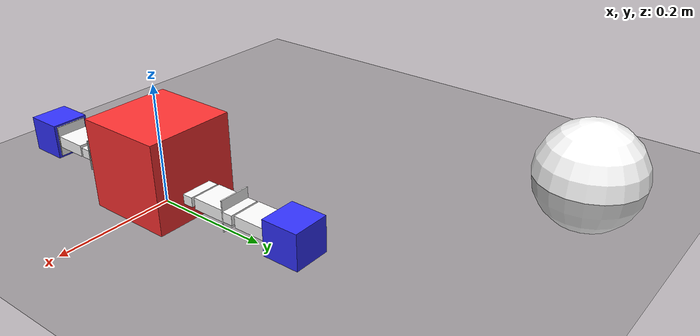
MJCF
<mujoco model="scene">
  <compiler autolimits="true" angle="radian"/>
  <option timestep="0.001" gravity="0 0 -9.8100000000000005" integrator="RK4"/>
  <visual>
    <headlight active="0"/>
  </visual>
  <default>
    <default class="/"/>
    <default class="mbs0/"/>
    <default class="mbs1/"/>
    <default class="mbs2/"/>
  </default>
  <asset>
    <material name="heightmap_0_material" class="/" texrepeat="1 1" emission="0" specular="0.5" shininess="0.5" reflectance="0" rgba="0.39215686274509803 0.39215686274509803 0.39215686274509803 1"/>
    <material name="mbs1/geom_mbs1_geom0_material" class="mbs1/" texrepeat="1 1" emission="0" specular="0.5" shininess="0.5" reflectance="0" rgba="1 0.19607843137254902 0.19607843137254902 1"/>
    <material name="mbs1/geom_mbs1_geom1_material" class="mbs1/" texrepeat="1 1" emission="0" specular="0.5" shininess="0.5" reflectance="0" rgba="1 1 1 1"/>
    <material name="mbs1/geom_mbs1_geom2_material" class="mbs1/" texrepeat="1 1" emission="0" specular="0.5" shininess="0.5" reflectance="0" rgba="1 1 1 1"/>
    <material name="mbs1/geom_mbs1_link0_geom0_material" class="mbs1/" texrepeat="1 1" emission="0" specular="0.5" shininess="0.5" reflectance="0" rgba="1 1 1 1"/>
    <material name="mbs1/geom_mbs1_link0_geom1_material" class="mbs1/" texrepeat="1 1" emission="0" specular="0.5" shininess="0.5" reflectance="0" rgba="1 1 1 1"/>
    <material name="mbs1/geom_mbs1_link0_geom2_material" class="mbs1/" texrepeat="1 1" emission="0" specular="0.5" shininess="0.5" reflectance="0" rgba="1 1 1 1"/>
    <material name="mbs1/geom_mbs1_link0_link1_geom0_material" class="mbs1/" texrepeat="1 1" emission="0" specular="0.5" shininess="0.5" reflectance="0" rgba="1 1 1 1"/>
    <material name="mbs1/geom_mbs1_link0_link1_geom1_material" class="mbs1/" texrepeat="1 1" emission="0" specular="0.5" shininess="0.5" reflectance="0" rgba="1 1 1 1"/>
    <material name="mbs1/geom_mbs1_link0_link1_geom2_material" class="mbs1/" texrepeat="1 1" emission="0" specular="0.5" shininess="0.5" reflectance="0" rgba="0.19607843137254902 0.19607843137254902 1 1"/>
    <material name="mbs1/geom_mbs1_link1_geom0_material" class="mbs1/" texrepeat="1 1" emission="0" specular="0.5" shininess="0.5" reflectance="0" rgba="1 1 1 1"/>
    <material name="mbs1/geom_mbs1_link1_geom1_material" class="mbs1/" texrepeat="1 1" emission="0" specular="0.5" shininess="0.5" reflectance="0" rgba="1 1 1 1"/>
    <material name="mbs1/geom_mbs1_link1_geom2_material" class="mbs1/" texrepeat="1 1" emission="0" specular="0.5" shininess="0.5" reflectance="0" rgba="1 1 1 1"/>
    <material name="mbs1/geom_mbs1_link1_link1_geom0_material" class="mbs1/" texrepeat="1 1" emission="0" specular="0.5" shininess="0.5" reflectance="0" rgba="1 1 1 1"/>
    <material name="mbs1/geom_mbs1_link1_link1_geom1_material" class="mbs1/" texrepeat="1 1" emission="0" specular="0.5" shininess="0.5" reflectance="0" rgba="1 1 1 1"/>
    <material name="mbs1/geom_mbs1_link1_link1_geom2_material" class="mbs1/" texrepeat="1 1" emission="0" specular="0.5" shininess="0.5" reflectance="0" rgba="0.19607843137254902 0.19607843137254902 1 1"/>
    <material name="mbs2/geom_mbs2_geom0_material" class="mbs2/" texrepeat="1 1" emission="0" specular="0.5" shininess="0.5" reflectance="0" rgba="1 1 1 1"/>
  </asset>
  <worldbody>
    <light name="//unnamed_light_0" class="/" directional="true" castshadow="false" pos="0 0 100" ambient="0.5 0.5 0.5"/>
    <body pos="0 0 0" quat="0 0 0 1" name="mbs0/"/>
    <geom name="//unnamed_geom_0" class="/" type="plane" size="10 10 1" material="heightmap_0_material" pos="0 0 0" quat="0 0 0 1"/>
    <body pos="0 0 0.074999999999999997" quat="0 0 0 1" name="mbs1/">
      <freejoint name="mbs1/"/>
      <geom name="mbs1/mbs1_geom0" class="mbs1/" type="box" size="0.074999999999999997 0.074999999999999997 0.074999999999999997" material="mbs1/geom_mbs1_geom0_material"/>
      <geom name="mbs1/mbs1_geom1" class="mbs1/" type="box" size="0.0089999999999999993 0.026499999999999999 0.0082945499999999995" material="mbs1/geom_mbs1_geom1_material" pos="0 0.084000000000000005 -0.032000000000000001" quat="0.70710700000000004 0 0 0.70710700000000004"/>
      <geom name="mbs1/mbs1_geom2" class="mbs1/" type="box" size="0.0089999999999999993 0.026499999999999999 0.0082945499999999995" material="mbs1/geom_mbs1_geom2_material" pos="0 -0.084000000000000005 -0.032000000000000001" quat="0.70710700000000004 0 0 -0.70710700000000004"/>
      <body name="mbs1/mbs1_link0" pos="0 0.109525 -0.032000000000000001" quat="0.70710700000000004 0 0 0.70710700000000004">
        <inertial pos="0.032186399999999997 0 0" quat="0 0.70710700000000004 0 0.70710700000000004" mass="0.099320000000000006" diaginertia="6.8264700000000004e-05 5.4081700000000001e-05 3.0502300000000001e-05"/>
        <joint name="mbs1/mbs1_joint0" class="mbs1/" pos="0 0 0" axis="0 1 0" range="-1.0471999999999999 1.0471999999999999" armature="0.002"/>
        <geom name="mbs1/mbs1_link0_geom0" class="mbs1/" type="box" size="0.029149999999999999 0.025600000000000001 0.01" material="mbs1/geom_mbs1_link0_geom0_material" pos="0.017999999999999999 0 0"/>
        <geom name="mbs1/mbs1_link0_geom1" class="mbs1/" type="box" size="0.001 0.026499999999999999 0.026499999999999999" material="mbs1/geom_mbs1_link0_geom1_material" pos="0.048149999999999998 0 0"/>
        <geom name="mbs1/mbs1_link0_geom2" class="mbs1/" type="box" size="0.0089999999999999993 0.026499999999999999 0.0082945499999999995" material="mbs1/geom_mbs1_link0_geom2_material" pos="0.05815 0 0"/>
        <body name="mbs1/mbs1_link0_link1" pos="0.083674999999999999 0 0">
          <inertial pos="0.049626900000000002 0 0" quat="0 0.70710700000000004 0 0.70710700000000004" mass="0.14343" diaginertia="0.000190805 0.000178464 6.4533699999999995e-05"/>
          <joint name="mbs1/mbs1_link0_joint1" class="mbs1/" pos="0 0 0" axis="0 1 0" range="-1.0471999999999999 1.0471999999999999" armature="0.002"/>
          <geom name="mbs1/mbs1_link0_link1_geom0" class="mbs1/" type="box" size="0.029149999999999999 0.025600000000000001 0.01" material="mbs1/geom_mbs1_link0_link1_geom0_material" pos="0.017999999999999999 0 0"/>
          <geom name="mbs1/mbs1_link0_link1_geom1" class="mbs1/" type="box" size="0.001 0.026499999999999999 0.026499999999999999" material="mbs1/geom_mbs1_link0_link1_geom1_material" pos="0.048149999999999998 0 0"/>
          <geom name="mbs1/mbs1_link0_link1_geom2" class="mbs1/" type="box" size="0.031443100000000002 0.031443100000000002 0.03015" material="mbs1/geom_mbs1_link0_link1_geom2_material" pos="0.080593100000000001 0 0"/>
        </body>
      </body>
      <body name="mbs1/mbs1_link1" pos="0 -0.109525 -0.032000000000000001" quat="0.70710700000000004 0 0 -0.70710700000000004">
        <inertial pos="0.032186399999999997 0 0" quat="0 0.70710700000000004 0 0.70710700000000004" mass="0.099320000000000006" diaginertia="6.8264700000000004e-05 5.4081700000000001e-05 3.0502300000000001e-05"/>
        <joint name="mbs1/mbs1_joint1" class="mbs1/" pos="0 0 0" axis="0 1 0" range="-1.0471999999999999 1.0471999999999999" armature="0.002"/>
        <geom name="mbs1/mbs1_link1_geom0" class="mbs1/" type="box" size="0.029149999999999999 0.025600000000000001 0.01" material="mbs1/geom_mbs1_link1_geom0_material" pos="0.017999999999999999 0 0"/>
        <geom name="mbs1/mbs1_link1_geom1" class="mbs1/" type="box" size="0.001 0.026499999999999999 0.026499999999999999" material="mbs1/geom_mbs1_link1_geom1_material" pos="0.048149999999999998 0 0"/>
        <geom name="mbs1/mbs1_link1_geom2" class="mbs1/" type="box" size="0.0089999999999999993 0.026499999999999999 0.0082945499999999995" material="mbs1/geom_mbs1_link1_geom2_material" pos="0.05815 0 0"/>
        <body name="mbs1/mbs1_link1_link1" pos="0.083674999999999999 0 0">
          <inertial pos="0.049626900000000002 0 0" quat="0 0.70710700000000004 0 0.70710700000000004" mass="0.14343" diaginertia="0.000190805 0.000178464 6.4533699999999995e-05"/>
          <joint name="mbs1/mbs1_link1_joint1" class="mbs1/" pos="0 0 0" axis="0 1 0" range="-1.0471999999999999 1.0471999999999999" armature="0.002"/>
          <geom name="mbs1/mbs1_link1_link1_geom0" class="mbs1/" type="box" size="0.029149999999999999 0.025600000000000001 0.01" material="mbs1/geom_mbs1_link1_link1_geom0_material" pos="0.017999999999999999 0 0"/>
          <geom name="mbs1/mbs1_link1_link1_geom1" class="mbs1/" type="box" size="0.001 0.026499999999999999 0.026499999999999999" material="mbs1/geom_mbs1_link1_link1_geom1_material" pos="0.048149999999999998 0 0"/>
          <geom name="mbs1/mbs1_link1_link1_geom2" class="mbs1/" type="box" size="0.031443100000000002 0.031443100000000002 0.03015" material="mbs1/geom_mbs1_link1_link1_geom2_material" pos="0.080593100000000001 0 0"/>
        </body>
      </body>
    </body>
    <body pos="-0.5 0.5 0" quat="0 0 0 1" name="mbs2/">
      <freejoint name="mbs2/"/>
      <geom name="mbs2/mbs2_geom0" class="mbs2/" size="0.10000000000000001" material="mbs2/geom_mbs2_geom0_material"/>
    </body>
  </worldbody>
  <actuator>
    <position name="mbs1/actuator_position_mbs1_joint0" class="mbs1/" joint="mbs1/mbs1_joint0" kp="5"/>
    <velocity name="mbs1/actuator_velocity_mbs1_joint0" class="mbs1/" joint="mbs1/mbs1_joint0" kv="0.050000000000000003"/>
    <position name="mbs1/actuator_position_mbs1_link0_joint1" class="mbs1/" joint="mbs1/mbs1_link0_joint1" kp="5"/>
    <velocity name="mbs1/actuator_velocity_mbs1_link0_joint1" class="mbs1/" joint="mbs1/mbs1_link0_joint1" kv="0.050000000000000003"/>
    <position name="mbs1/actuator_position_mbs1_joint1" class="mbs1/" joint="mbs1/mbs1_joint1" kp="5"/>
    <velocity name="mbs1/actuator_velocity_mbs1_joint1" class="mbs1/" joint="mbs1/mbs1_joint1" kv="0.050000000000000003"/>
    <position name="mbs1/actuator_position_mbs1_link1_joint1" class="mbs1/" joint="mbs1/mbs1_link1_joint1" kp="5"/>
    <velocity name="mbs1/actuator_velocity_mbs1_link1_joint1" class="mbs1/" joint="mbs1/mbs1_link1_joint1" kv="0.050000000000000003"/>
  </actuator>
</mujoco>
